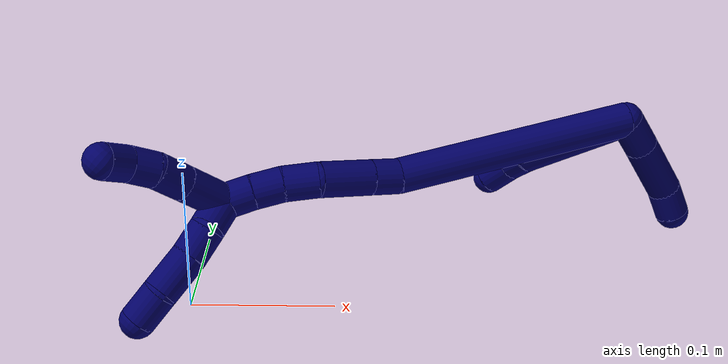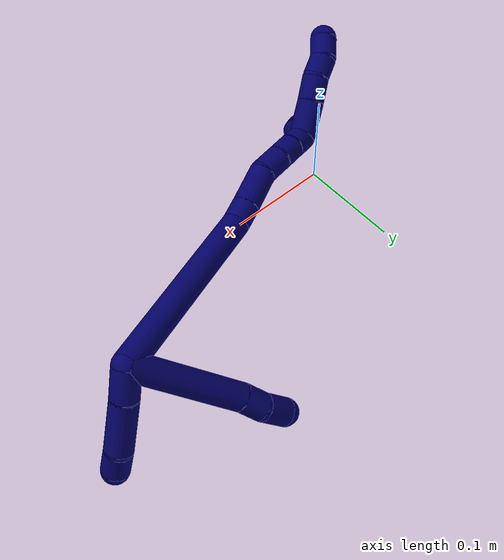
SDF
<sdf version="1.7">
 <world name="default">
  <model name="7">
   <static>0</static>
   <link name="7">
    <collision name="collision-cylinder-e_1_2_8">
     <pose>-0.011515 0.04112 -0.029482 -2.19283 -0.223762 0.430804</pose>
     <geometry><cylinder><radius>0.0125</radius><length>0.103782</length></cylinder></geometry>
     <surface>
      <friction><ode><mu>1.16</mu><mu2>1.16</mu2><slip1>0</slip1><slip2>0</slip2></ode></friction>
      <contact><ode><kp>1e+06</kp><kd>1</kd><max_vel>0</max_vel><min_depth>0.001</min_depth></ode></contact>
     </surface>
    </collision>
    <visual name="visual-cylinder-e_1_2_8">
     <pose>-0.011515 0.04112 -0.029482 -2.19283 -0.223762 0.430804</pose>
     <geometry><cylinder><radius>0.0125</radius><length>0.103782</length></cylinder></geometry>
     <material><ambient>0.003922 0 0.403922 1</ambient></material>
    </visual>
    <collision name="collision-cylinder-e_2_8_9">
     <pose>-0.024166 0.09143 -0.064401 -2.10502 -0.106058 0.185614</pose>
     <geometry><cylinder><radius>0.0125</radius><length>0.021475</length></cylinder></geometry>
     <surface>
      <friction><ode><mu>1.16</mu><mu2>1.16</mu2><slip1>0</slip1><slip2>0</slip2></ode></friction>
      <contact><ode><kp>1e+06</kp><kd>1</kd><max_vel>0</max_vel><min_depth>0.001</min_depth></ode></contact>
     </surface>
    </collision>
    <visual name="visual-cylinder-e_2_8_9">
     <pose>-0.024166 0.09143 -0.064401 -2.10502 -0.106058 0.185614</pose>
     <geometry><cylinder><radius>0.0125</radius><length>0.021475</length></cylinder></geometry>
     <material><ambient>0.003922 0 0.403922 1</ambient></material>
    </visual>
    <collision name="collision-cylinder-e_3_9_6">
     <pose>-0.026874 0.108958 -0.07884 -2.39441 -0.127375 0.322547</pose>
     <geometry><cylinder><radius>0.0125</radius><length>0.024744</length></cylinder></geometry>
     <surface>
      <friction><ode><mu>1.16</mu><mu2>1.16</mu2><slip1>0</slip1><slip2>0</slip2></ode></friction>
      <contact><ode><kp>1e+06</kp><kd>1</kd><max_vel>0</max_vel><min_depth>0.001</min_depth></ode></contact>
     </surface>
    </collision>
    <visual name="visual-cylinder-e_3_9_6">
     <pose>-0.026874 0.108958 -0.07884 -2.39441 -0.127375 0.322547</pose>
     <geometry><cylinder><radius>0.0125</radius><length>0.024744</length></cylinder></geometry>
     <material><ambient>0.003922 0 0.403922 1</ambient></material>
    </visual>
    <collision name="collision-cylinder-e_1_2_10">
     <pose>0.012076 0.008266 -0.002155 -1.82584 0.955122 -1.18026</pose>
     <geometry><cylinder><radius>0.0125</radius><length>0.029585</length></cylinder></geometry>
     <surface>
      <friction><ode><mu>1.16</mu><mu2>1.16</mu2><slip1>0</slip1><slip2>0</slip2></ode></friction>
      <contact><ode><kp>1e+06</kp><kd>1</kd><max_vel>0</max_vel><min_depth>0.001</min_depth></ode></contact>
     </surface>
    </collision>
    <visual name="visual-cylinder-e_1_2_10">
     <pose>0.012076 0.008266 -0.002155 -1.82584 0.955122 -1.18026</pose>
     <geometry><cylinder><radius>0.0125</radius><length>0.029585</length></cylinder></geometry>
     <material><ambient>0.003922 0 0.403922 1</ambient></material>
    </visual>
    <collision name="collision-cylinder-e_2_10_11">
     <pose>0.044261 0.028661 -0.008638 -1.91352 1.00119 -1.31994</pose>
     <geometry><cylinder><radius>0.0125</radius><length>0.047756</length></cylinder></geometry>
     <surface>
      <friction><ode><mu>1.16</mu><mu2>1.16</mu2><slip1>0</slip1><slip2>0</slip2></ode></friction>
      <contact><ode><kp>1e+06</kp><kd>1</kd><max_vel>0</max_vel><min_depth>0.001</min_depth></ode></contact>
     </surface>
    </collision>
    <visual name="visual-cylinder-e_2_10_11">
     <pose>0.044261 0.028661 -0.008638 -1.91352 1.00119 -1.31994</pose>
     <geometry><cylinder><radius>0.0125</radius><length>0.047756</length></cylinder></geometry>
     <material><ambient>0.003922 0 0.403922 1</ambient></material>
    </visual>
    <collision name="collision-cylinder-e_3_11_5">
     <pose>0.07397 0.045136 -0.017122 -2.3339 1.01125 -1.82689</pose>
     <geometry><cylinder><radius>0.0125</radius><length>0.022659</length></cylinder></geometry>
     <surface>
      <friction><ode><mu>1.16</mu><mu2>1.16</mu2><slip1>0</slip1><slip2>0</slip2></ode></friction>
      <contact><ode><kp>1e+06</kp><kd>1</kd><max_vel>0</max_vel><min_depth>0.001</min_depth></ode></contact>
     </surface>
    </collision>
    <visual name="visual-cylinder-e_3_11_5">
     <pose>0.07397 0.045136 -0.017122 -2.3339 1.01125 -1.82689</pose>
     <geometry><cylinder><radius>0.0125</radius><length>0.022659</length></cylinder></geometry>
     <material><ambient>0.003922 0 0.403922 1</ambient></material>
    </visual>
    <collision name="collision-cylinder-e_1_2_12">
     <pose>-0.050927 -0.012797 -0.069935 2.96062 -0.62159 -2.59097</pose>
     <geometry><cylinder><radius>0.0125</radius><length>0.174908</length></cylinder></geometry>
     <surface>
      <friction><ode><mu>1.16</mu><mu2>1.16</mu2><slip1>0</slip1><slip2>0</slip2></ode></friction>
      <contact><ode><kp>1e+06</kp><kd>1</kd><max_vel>0</max_vel><min_depth>0.001</min_depth></ode></contact>
     </surface>
    </collision>
    <visual name="visual-cylinder-e_1_2_12">
     <pose>-0.050927 -0.012797 -0.069935 2.96062 -0.62159 -2.59097</pose>
     <geometry><cylinder><radius>0.0125</radius><length>0.174908</length></cylinder></geometry>
     <material><ambient>0.003922 0 0.403922 1</ambient></material>
    </visual>
    <collision name="collision-cylinder-e_2_12_13">
     <pose>-0.109161 -0.02846 -0.146531 2.73523 -0.789171 -2.22272</pose>
     <geometry><cylinder><radius>0.0125</radius><length>0.020589</length></cylinder></geometry>
     <surface>
      <friction><ode><mu>1.16</mu><mu2>1.16</mu2><slip1>0</slip1><slip2>0</slip2></ode></friction>
      <contact><ode><kp>1e+06</kp><kd>1</kd><max_vel>0</max_vel><min_depth>0.001</min_depth></ode></contact>
     </surface>
    </collision>
    <visual name="visual-cylinder-e_2_12_13">
     <pose>-0.109161 -0.02846 -0.146531 2.73523 -0.789171 -2.22272</pose>
     <geometry><cylinder><radius>0.0125</radius><length>0.020589</length></cylinder></geometry>
     <material><ambient>0.003922 0 0.403922 1</ambient></material>
    </visual>
    <collision name="collision-cylinder-e_3_13_14">
     <pose>-0.130015 -0.037061 -0.165514 2.70598 -0.783789 -2.15827</pose>
     <geometry><cylinder><radius>0.0125</radius><length>0.03838</length></cylinder></geometry>
     <surface>
      <friction><ode><mu>1.16</mu><mu2>1.16</mu2><slip1>0</slip1><slip2>0</slip2></ode></friction>
      <contact><ode><kp>1e+06</kp><kd>1</kd><max_vel>0</max_vel><min_depth>0.001</min_depth></ode></contact>
     </surface>
    </collision>
    <visual name="visual-cylinder-e_3_13_14">
     <pose>-0.130015 -0.037061 -0.165514 2.70598 -0.783789 -2.15827</pose>
     <geometry><cylinder><radius>0.0125</radius><length>0.03838</length></cylinder></geometry>
     <material><ambient>0.003922 0 0.403922 1</ambient></material>
    </visual>
    <collision name="collision-cylinder-e_4_14_15">
     <pose>-0.151782 -0.042835 -0.186816 3.1373 -0.741243 -3.13055</pose>
     <geometry><cylinder><radius>0.0125</radius><length>0.024348</length></cylinder></geometry>
     <surface>
      <friction><ode><mu>1.16</mu><mu2>1.16</mu2><slip1>0</slip1><slip2>0</slip2></ode></friction>
      <contact><ode><kp>1e+06</kp><kd>1</kd><max_vel>0</max_vel><min_depth>0.001</min_depth></ode></contact>
     </surface>
    </collision>
    <visual name="visual-cylinder-e_4_14_15">
     <pose>-0.151782 -0.042835 -0.186816 3.1373 -0.741243 -3.13055</pose>
     <geometry><cylinder><radius>0.0125</radius><length>0.024348</length></cylinder></geometry>
     <material><ambient>0.003922 0 0.403922 1</ambient></material>
    </visual>
    <collision name="collision-cylinder-e_5_15_16">
     <pose>-0.166066 -0.043175 -0.204585 3.10721 -0.603703 -3.03127</pose>
     <geometry><cylinder><radius>0.0125</radius><length>0.021365</length></cylinder></geometry>
     <surface>
      <friction><ode><mu>1.16</mu><mu2>1.16</mu2><slip1>0</slip1><slip2>0</slip2></ode></friction>
      <contact><ode><kp>1e+06</kp><kd>1</kd><max_vel>0</max_vel><min_depth>0.001</min_depth></ode></contact>
     </surface>
    </collision>
    <visual name="visual-cylinder-e_5_15_16">
     <pose>-0.166066 -0.043175 -0.204585 3.10721 -0.603703 -3.03127</pose>
     <geometry><cylinder><radius>0.0125</radius><length>0.021365</length></cylinder></geometry>
     <material><ambient>0.003922 0 0.403922 1</ambient></material>
    </visual>
    <collision name="collision-cylinder-e_6_16_1">
     <pose>-0.177303 -0.043699 -0.222168 3.11638 -0.531474 -3.04902</pose>
     <geometry><cylinder><radius>0.0125</radius><length>0.020411</length></cylinder></geometry>
     <surface>
      <friction><ode><mu>1.16</mu><mu2>1.16</mu2><slip1>0</slip1><slip2>0</slip2></ode></friction>
      <contact><ode><kp>1e+06</kp><kd>1</kd><max_vel>0</max_vel><min_depth>0.001</min_depth></ode></contact>
     </surface>
    </collision>
    <visual name="visual-cylinder-e_6_16_1">
     <pose>-0.177303 -0.043699 -0.222168 3.11638 -0.531474 -3.04902</pose>
     <geometry><cylinder><radius>0.0125</radius><length>0.020411</length></cylinder></geometry>
     <material><ambient>0.003922 0 0.403922 1</ambient></material>
    </visual>
    <collision name="collision-cylinder-e_1_1_17">
     <pose>-0.181114 -0.049131 -0.241224 2.67176 0.11771 0.482789</pose>
     <geometry><cylinder><radius>0.0125</radius><length>0.023176</length></cylinder></geometry>
     <surface>
      <friction><ode><mu>1.16</mu><mu2>1.16</mu2><slip1>0</slip1><slip2>0</slip2></ode></friction>
      <contact><ode><kp>1e+06</kp><kd>1</kd><max_vel>0</max_vel><min_depth>0.001</min_depth></ode></contact>
     </surface>
    </collision>
    <visual name="visual-cylinder-e_1_1_17">
     <pose>-0.181114 -0.049131 -0.241224 2.67176 0.11771 0.482789</pose>
     <geometry><cylinder><radius>0.0125</radius><length>0.023176</length></cylinder></geometry>
     <material><ambient>0.003922 0 0.403922 1</ambient></material>
    </visual>
    <collision name="collision-cylinder-e_2_17_18">
     <pose>-0.178315 -0.055733 -0.262262 3.01315 0.131557 1.59483</pose>
     <geometry><cylinder><radius>0.0125</radius><length>0.021922</length></cylinder></geometry>
     <surface>
      <friction><ode><mu>1.16</mu><mu2>1.16</mu2><slip1>0</slip1><slip2>0</slip2></ode></friction>
      <contact><ode><kp>1e+06</kp><kd>1</kd><max_vel>0</max_vel><min_depth>0.001</min_depth></ode></contact>
     </surface>
    </collision>
    <visual name="visual-cylinder-e_2_17_18">
     <pose>-0.178315 -0.055733 -0.262262 3.01315 0.131557 1.59483</pose>
     <geometry><cylinder><radius>0.0125</radius><length>0.021922</length></cylinder></geometry>
     <material><ambient>0.003922 0 0.403922 1</ambient></material>
    </visual>
    <collision name="collision-cylinder-e_3_18_19">
     <pose>-0.176449 -0.059387 -0.288214 2.99365 0.027919 0.372408</pose>
     <geometry><cylinder><radius>0.0125</radius><length>0.030699</length></cylinder></geometry>
     <surface>
      <friction><ode><mu>1.16</mu><mu2>1.16</mu2><slip1>0</slip1><slip2>0</slip2></ode></friction>
      <contact><ode><kp>1e+06</kp><kd>1</kd><max_vel>0</max_vel><min_depth>0.001</min_depth></ode></contact>
     </surface>
    </collision>
    <visual name="visual-cylinder-e_3_18_19">
     <pose>-0.176449 -0.059387 -0.288214 2.99365 0.027919 0.372408</pose>
     <geometry><cylinder><radius>0.0125</radius><length>0.030699</length></cylinder></geometry>
     <material><ambient>0.003922 0 0.403922 1</ambient></material>
    </visual>
    <collision name="collision-cylinder-e_4_19_4">
     <pose>-0.175437 -0.06008 -0.315375 -3.01148 0.048225 -0.709114</pose>
     <geometry><cylinder><radius>0.0125</radius><length>0.024204</length></cylinder></geometry>
     <surface>
      <friction><ode><mu>1.16</mu><mu2>1.16</mu2><slip1>0</slip1><slip2>0</slip2></ode></friction>
      <contact><ode><kp>1e+06</kp><kd>1</kd><max_vel>0</max_vel><min_depth>0.001</min_depth></ode></contact>
     </surface>
    </collision>
    <visual name="visual-cylinder-e_4_19_4">
     <pose>-0.175437 -0.06008 -0.315375 -3.01148 0.048225 -0.709114</pose>
     <geometry><cylinder><radius>0.0125</radius><length>0.024204</length></cylinder></geometry>
     <material><ambient>0.003922 0 0.403922 1</ambient></material>
    </visual>
    <collision name="collision-cylinder-e_1_1_20">
     <pose>-0.197088 -0.052646 -0.234484 1.95433 -0.998767 -1.35963</pose>
     <geometry><cylinder><radius>0.0125</radius><length>0.034759</length></cylinder></geometry>
     <surface>
      <friction><ode><mu>1.16</mu><mu2>1.16</mu2><slip1>0</slip1><slip2>0</slip2></ode></friction>
      <contact><ode><kp>1e+06</kp><kd>1</kd><max_vel>0</max_vel><min_depth>0.001</min_depth></ode></contact>
     </surface>
    </collision>
    <visual name="visual-cylinder-e_1_1_20">
     <pose>-0.197088 -0.052646 -0.234484 1.95433 -0.998767 -1.35963</pose>
     <geometry><cylinder><radius>0.0125</radius><length>0.034759</length></cylinder></geometry>
     <material><ambient>0.003922 0 0.403922 1</ambient></material>
    </visual>
    <collision name="collision-cylinder-e_2_20_21">
     <pose>-0.221619 -0.067813 -0.240428 1.9306 -0.96416 -1.29453</pose>
     <geometry><cylinder><radius>0.0125</radius><length>0.024146</length></cylinder></geometry>
     <surface>
      <friction><ode><mu>1.16</mu><mu2>1.16</mu2><slip1>0</slip1><slip2>0</slip2></ode></friction>
      <contact><ode><kp>1e+06</kp><kd>1</kd><max_vel>0</max_vel><min_depth>0.001</min_depth></ode></contact>
     </surface>
    </collision>
    <visual name="visual-cylinder-e_2_20_21">
     <pose>-0.221619 -0.067813 -0.240428 1.9306 -0.96416 -1.29453</pose>
     <geometry><cylinder><radius>0.0125</radius><length>0.024146</length></cylinder></geometry>
     <material><ambient>0.003922 0 0.403922 1</ambient></material>
    </visual>
    <collision name="collision-cylinder-e_3_21_22">
     <pose>-0.239807 -0.078204 -0.247012 2.38239 -0.964268 -1.8389</pose>
     <geometry><cylinder><radius>0.0125</radius><length>0.020129</length></cylinder></geometry>
     <surface>
      <friction><ode><mu>1.16</mu><mu2>1.16</mu2><slip1>0</slip1><slip2>0</slip2></ode></friction>
      <contact><ode><kp>1e+06</kp><kd>1</kd><max_vel>0</max_vel><min_depth>0.001</min_depth></ode></contact>
     </surface>
    </collision>
    <visual name="visual-cylinder-e_3_21_22">
     <pose>-0.239807 -0.078204 -0.247012 2.38239 -0.964268 -1.8389</pose>
     <geometry><cylinder><radius>0.0125</radius><length>0.020129</length></cylinder></geometry>
     <material><ambient>0.003922 0 0.403922 1</ambient></material>
    </visual>
    <collision name="collision-cylinder-e_4_22_3">
     <pose>-0.254685 -0.089126 -0.255369 2.11242 -0.68203 -1.12103</pose>
     <geometry><cylinder><radius>0.0125</radius><length>0.020966</length></cylinder></geometry>
     <surface>
      <friction><ode><mu>1.16</mu><mu2>1.16</mu2><slip1>0</slip1><slip2>0</slip2></ode></friction>
      <contact><ode><kp>1e+06</kp><kd>1</kd><max_vel>0</max_vel><min_depth>0.001</min_depth></ode></contact>
     </surface>
    </collision>
    <visual name="visual-cylinder-e_4_22_3">
     <pose>-0.254685 -0.089126 -0.255369 2.11242 -0.68203 -1.12103</pose>
     <geometry><cylinder><radius>0.0125</radius><length>0.020966</length></cylinder></geometry>
     <material><ambient>0.003922 0 0.403922 1</ambient></material>
    </visual>
    <collision name="collision-sphere-3">
     <pose>-0.261293 -0.096099 -0.259565 0 -0 0</pose>
     <geometry><sphere><radius>0.0125</radius></sphere></geometry>
     <surface>
      <friction><ode><mu>1.16</mu><mu2>1.16</mu2><slip1>0</slip1><slip2>0</slip2></ode></friction>
      <contact><ode><kp>1e+06</kp><kd>1</kd><max_vel>0</max_vel><min_depth>0.001</min_depth></ode></contact>
     </surface>
    </collision>
    <visual name="visual-sphere-3">
     <pose>-0.261293 -0.096099 -0.259565 0 -0 0</pose>
     <geometry><sphere><radius>0.0125</radius></sphere></geometry>
     <material><ambient>0.003922 0 0.403922 1</ambient></material>
    </visual>
    <collision name="collision-sphere-22">
     <pose>-0.248076 -0.082153 -0.251174 0 -0 0</pose>
     <geometry><sphere><radius>0.0125</radius></sphere></geometry>
     <surface>
      <friction><ode><mu>1.16</mu><mu2>1.16</mu2><slip1>0</slip1><slip2>0</slip2></ode></friction>
      <contact><ode><kp>1e+06</kp><kd>1</kd><max_vel>0</max_vel><min_depth>0.001</min_depth></ode></contact>
     </surface>
    </collision>
    <visual name="visual-sphere-22">
     <pose>-0.248076 -0.082153 -0.251174 0 -0 0</pose>
     <geometry><sphere><radius>0.0125</radius></sphere></geometry>
     <material><ambient>0.003922 0 0.403922 1</ambient></material>
    </visual>
    <collision name="collision-sphere-21">
     <pose>-0.231538 -0.074255 -0.242851 0 -0 0</pose>
     <geometry><sphere><radius>0.0125</radius></sphere></geometry>
     <surface>
      <friction><ode><mu>1.16</mu><mu2>1.16</mu2><slip1>0</slip1><slip2>0</slip2></ode></friction>
      <contact><ode><kp>1e+06</kp><kd>1</kd><max_vel>0</max_vel><min_depth>0.001</min_depth></ode></contact>
     </surface>
    </collision>
    <visual name="visual-sphere-21">
     <pose>-0.231538 -0.074255 -0.242851 0 -0 0</pose>
     <geometry><sphere><radius>0.0125</radius></sphere></geometry>
     <material><ambient>0.003922 0 0.403922 1</ambient></material>
    </visual>
    <collision name="collision-sphere-20">
     <pose>-0.211701 -0.061371 -0.238004 0 -0 0</pose>
     <geometry><sphere><radius>0.0125</radius></sphere></geometry>
     <surface>
      <friction><ode><mu>1.16</mu><mu2>1.16</mu2><slip1>0</slip1><slip2>0</slip2></ode></friction>
      <contact><ode><kp>1e+06</kp><kd>1</kd><max_vel>0</max_vel><min_depth>0.001</min_depth></ode></contact>
     </surface>
    </collision>
    <visual name="visual-sphere-20">
     <pose>-0.211701 -0.061371 -0.238004 0 -0 0</pose>
     <geometry><sphere><radius>0.0125</radius></sphere></geometry>
     <material><ambient>0.003922 0 0.403922 1</ambient></material>
    </visual>
    <collision name="collision-sphere-4">
     <pose>-0.174854 -0.058512 -0.327361 0 -0 0</pose>
     <geometry><sphere><radius>0.0125</radius></sphere></geometry>
     <surface>
      <friction><ode><mu>1.16</mu><mu2>1.16</mu2><slip1>0</slip1><slip2>0</slip2></ode></friction>
      <contact><ode><kp>1e+06</kp><kd>1</kd><max_vel>0</max_vel><min_depth>0.001</min_depth></ode></contact>
     </surface>
    </collision>
    <visual name="visual-sphere-4">
     <pose>-0.174854 -0.058512 -0.327361 0 -0 0</pose>
     <geometry><sphere><radius>0.0125</radius></sphere></geometry>
     <material><ambient>0.003922 0 0.403922 1</ambient></material>
    </visual>
    <collision name="collision-sphere-11">
     <pose>0.064369 0.04079 -0.012966 0 -0 0</pose>
     <geometry><sphere><radius>0.0125</radius></sphere></geometry>
     <surface>
      <friction><ode><mu>1.16</mu><mu2>1.16</mu2><slip1>0</slip1><slip2>0</slip2></ode></friction>
      <contact><ode><kp>1e+06</kp><kd>1</kd><max_vel>0</max_vel><min_depth>0.001</min_depth></ode></contact>
     </surface>
    </collision>
    <visual name="visual-sphere-11">
     <pose>0.064369 0.04079 -0.012966 0 -0 0</pose>
     <geometry><sphere><radius>0.0125</radius></sphere></geometry>
     <material><ambient>0.003922 0 0.403922 1</ambient></material>
    </visual>
    <collision name="collision-sphere-10">
     <pose>0.024153 0.016533 -0.004311 0 -0 0</pose>
     <geometry><sphere><radius>0.0125</radius></sphere></geometry>
     <surface>
      <friction><ode><mu>1.16</mu><mu2>1.16</mu2><slip1>0</slip1><slip2>0</slip2></ode></friction>
      <contact><ode><kp>1e+06</kp><kd>1</kd><max_vel>0</max_vel><min_depth>0.001</min_depth></ode></contact>
     </surface>
    </collision>
    <visual name="visual-sphere-10">
     <pose>0.024153 0.016533 -0.004311 0 -0 0</pose>
     <geometry><sphere><radius>0.0125</radius></sphere></geometry>
     <material><ambient>0.003922 0 0.403922 1</ambient></material>
    </visual>
    <collision name="collision-sphere-6">
     <pose>-0.028446 0.117298 -0.087843 0 -0 0</pose>
     <geometry><sphere><radius>0.0125</radius></sphere></geometry>
     <surface>
      <friction><ode><mu>1.16</mu><mu2>1.16</mu2><slip1>0</slip1><slip2>0</slip2></ode></friction>
      <contact><ode><kp>1e+06</kp><kd>1</kd><max_vel>0</max_vel><min_depth>0.001</min_depth></ode></contact>
     </surface>
    </collision>
    <visual name="visual-sphere-6">
     <pose>-0.028446 0.117298 -0.087843 0 -0 0</pose>
     <geometry><sphere><radius>0.0125</radius></sphere></geometry>
     <material><ambient>0.003922 0 0.403922 1</ambient></material>
    </visual>
    <collision name="collision-sphere-9">
     <pose>-0.025302 0.100619 -0.069838 0 -0 0</pose>
     <geometry><sphere><radius>0.0125</radius></sphere></geometry>
     <surface>
      <friction><ode><mu>1.16</mu><mu2>1.16</mu2><slip1>0</slip1><slip2>0</slip2></ode></friction>
      <contact><ode><kp>1e+06</kp><kd>1</kd><max_vel>0</max_vel><min_depth>0.001</min_depth></ode></contact>
     </surface>
    </collision>
    <visual name="visual-sphere-9">
     <pose>-0.025302 0.100619 -0.069838 0 -0 0</pose>
     <geometry><sphere><radius>0.0125</radius></sphere></geometry>
     <material><ambient>0.003922 0 0.403922 1</ambient></material>
    </visual>
    <collision name="collision-sphere-2">
     <geometry><sphere><radius>0.0125</radius></sphere></geometry>
     <surface>
      <friction><ode><mu>1.16</mu><mu2>1.16</mu2><slip1>0</slip1><slip2>0</slip2></ode></friction>
      <contact><ode><kp>1e+06</kp><kd>1</kd><max_vel>0</max_vel><min_depth>0.001</min_depth></ode></contact>
     </surface>
    </collision>
    <visual name="visual-sphere-2">
     <geometry><sphere><radius>0.0125</radius></sphere></geometry>
     <material><ambient>0.003922 0 0.403922 1</ambient></material>
    </visual>
    <collision name="collision-sphere-19">
     <pose>-0.176021 -0.061648 -0.30339 0 -0 0</pose>
     <geometry><sphere><radius>0.0125</radius></sphere></geometry>
     <surface>
      <friction><ode><mu>1.16</mu><mu2>1.16</mu2><slip1>0</slip1><slip2>0</slip2></ode></friction>
      <contact><ode><kp>1e+06</kp><kd>1</kd><max_vel>0</max_vel><min_depth>0.001</min_depth></ode></contact>
     </surface>
    </collision>
    <visual name="visual-sphere-19">
     <pose>-0.176021 -0.061648 -0.30339 0 -0 0</pose>
     <geometry><sphere><radius>0.0125</radius></sphere></geometry>
     <material><ambient>0.003922 0 0.403922 1</ambient></material>
    </visual>
    <collision name="collision-sphere-8">
     <pose>-0.023029 0.08224 -0.058965 0 -0 0</pose>
     <geometry><sphere><radius>0.0125</radius></sphere></geometry>
     <surface>
      <friction><ode><mu>1.16</mu><mu2>1.16</mu2><slip1>0</slip1><slip2>0</slip2></ode></friction>
      <contact><ode><kp>1e+06</kp><kd>1</kd><max_vel>0</max_vel><min_depth>0.001</min_depth></ode></contact>
     </surface>
    </collision>
    <visual name="visual-sphere-8">
     <pose>-0.023029 0.08224 -0.058965 0 -0 0</pose>
     <geometry><sphere><radius>0.0125</radius></sphere></geometry>
     <material><ambient>0.003922 0 0.403922 1</ambient></material>
    </visual>
    <collision name="collision-sphere-5">
     <pose>0.083572 0.049482 -0.021279 0 -0 0</pose>
     <geometry><sphere><radius>0.0125</radius></sphere></geometry>
     <surface>
      <friction><ode><mu>1.16</mu><mu2>1.16</mu2><slip1>0</slip1><slip2>0</slip2></ode></friction>
      <contact><ode><kp>1e+06</kp><kd>1</kd><max_vel>0</max_vel><min_depth>0.001</min_depth></ode></contact>
     </surface>
    </collision>
    <visual name="visual-sphere-5">
     <pose>0.083572 0.049482 -0.021279 0 -0 0</pose>
     <geometry><sphere><radius>0.0125</radius></sphere></geometry>
     <material><ambient>0.003922 0 0.403922 1</ambient></material>
    </visual>
    <collision name="collision-sphere-12">
     <pose>-0.101854 -0.025593 -0.13987 0 -0 0</pose>
     <geometry><sphere><radius>0.0125</radius></sphere></geometry>
     <surface>
      <friction><ode><mu>1.16</mu><mu2>1.16</mu2><slip1>0</slip1><slip2>0</slip2></ode></friction>
      <contact><ode><kp>1e+06</kp><kd>1</kd><max_vel>0</max_vel><min_depth>0.001</min_depth></ode></contact>
     </surface>
    </collision>
    <visual name="visual-sphere-12">
     <pose>-0.101854 -0.025593 -0.13987 0 -0 0</pose>
     <geometry><sphere><radius>0.0125</radius></sphere></geometry>
     <material><ambient>0.003922 0 0.403922 1</ambient></material>
    </visual>
    <collision name="collision-sphere-13">
     <pose>-0.116467 -0.031326 -0.153192 0 -0 0</pose>
     <geometry><sphere><radius>0.0125</radius></sphere></geometry>
     <surface>
      <friction><ode><mu>1.16</mu><mu2>1.16</mu2><slip1>0</slip1><slip2>0</slip2></ode></friction>
      <contact><ode><kp>1e+06</kp><kd>1</kd><max_vel>0</max_vel><min_depth>0.001</min_depth></ode></contact>
     </surface>
    </collision>
    <visual name="visual-sphere-13">
     <pose>-0.116467 -0.031326 -0.153192 0 -0 0</pose>
     <geometry><sphere><radius>0.0125</radius></sphere></geometry>
     <material><ambient>0.003922 0 0.403922 1</ambient></material>
    </visual>
    <collision name="collision-sphere-14">
     <pose>-0.143562 -0.042796 -0.177836 0 -0 0</pose>
     <geometry><sphere><radius>0.0125</radius></sphere></geometry>
     <surface>
      <friction><ode><mu>1.16</mu><mu2>1.16</mu2><slip1>0</slip1><slip2>0</slip2></ode></friction>
      <contact><ode><kp>1e+06</kp><kd>1</kd><max_vel>0</max_vel><min_depth>0.001</min_depth></ode></contact>
     </surface>
    </collision>
    <visual name="visual-sphere-14">
     <pose>-0.143562 -0.042796 -0.177836 0 -0 0</pose>
     <geometry><sphere><radius>0.0125</radius></sphere></geometry>
     <material><ambient>0.003922 0 0.403922 1</ambient></material>
    </visual>
    <collision name="collision-sphere-15">
     <pose>-0.160002 -0.042873 -0.195796 0 -0 0</pose>
     <geometry><sphere><radius>0.0125</radius></sphere></geometry>
     <surface>
      <friction><ode><mu>1.16</mu><mu2>1.16</mu2><slip1>0</slip1><slip2>0</slip2></ode></friction>
      <contact><ode><kp>1e+06</kp><kd>1</kd><max_vel>0</max_vel><min_depth>0.001</min_depth></ode></contact>
     </surface>
    </collision>
    <visual name="visual-sphere-15">
     <pose>-0.160002 -0.042873 -0.195796 0 -0 0</pose>
     <geometry><sphere><radius>0.0125</radius></sphere></geometry>
     <material><ambient>0.003922 0 0.403922 1</ambient></material>
    </visual>
    <collision name="collision-sphere-16">
     <pose>-0.172131 -0.043478 -0.213374 0 -0 0</pose>
     <geometry><sphere><radius>0.0125</radius></sphere></geometry>
     <surface>
      <friction><ode><mu>1.16</mu><mu2>1.16</mu2><slip1>0</slip1><slip2>0</slip2></ode></friction>
      <contact><ode><kp>1e+06</kp><kd>1</kd><max_vel>0</max_vel><min_depth>0.001</min_depth></ode></contact>
     </surface>
    </collision>
    <visual name="visual-sphere-16">
     <pose>-0.172131 -0.043478 -0.213374 0 -0 0</pose>
     <geometry><sphere><radius>0.0125</radius></sphere></geometry>
     <material><ambient>0.003922 0 0.403922 1</ambient></material>
    </visual>
    <collision name="collision-sphere-1">
     <pose>-0.182475 -0.043921 -0.230963 0 -0 0</pose>
     <geometry><sphere><radius>0.0125</radius></sphere></geometry>
     <surface>
      <friction><ode><mu>1.16</mu><mu2>1.16</mu2><slip1>0</slip1><slip2>0</slip2></ode></friction>
      <contact><ode><kp>1e+06</kp><kd>1</kd><max_vel>0</max_vel><min_depth>0.001</min_depth></ode></contact>
     </surface>
    </collision>
    <visual name="visual-sphere-1">
     <pose>-0.182475 -0.043921 -0.230963 0 -0 0</pose>
     <geometry><sphere><radius>0.0125</radius></sphere></geometry>
     <material><ambient>0.003922 0 0.403922 1</ambient></material>
    </visual>
    <collision name="collision-sphere-18">
     <pose>-0.176877 -0.057125 -0.273038 0 -0 0</pose>
     <geometry><sphere><radius>0.0125</radius></sphere></geometry>
     <surface>
      <friction><ode><mu>1.16</mu><mu2>1.16</mu2><slip1>0</slip1><slip2>0</slip2></ode></friction>
      <contact><ode><kp>1e+06</kp><kd>1</kd><max_vel>0</max_vel><min_depth>0.001</min_depth></ode></contact>
     </surface>
    </collision>
    <visual name="visual-sphere-18">
     <pose>-0.176877 -0.057125 -0.273038 0 -0 0</pose>
     <geometry><sphere><radius>0.0125</radius></sphere></geometry>
     <material><ambient>0.003922 0 0.403922 1</ambient></material>
    </visual>
    <collision name="collision-sphere-17">
     <pose>-0.179753 -0.054341 -0.251485 0 -0 0</pose>
     <geometry><sphere><radius>0.0125</radius></sphere></geometry>
     <surface>
      <friction><ode><mu>1.16</mu><mu2>1.16</mu2><slip1>0</slip1><slip2>0</slip2></ode></friction>
      <contact><ode><kp>1e+06</kp><kd>1</kd><max_vel>0</max_vel><min_depth>0.001</min_depth></ode></contact>
     </surface>
    </collision>
    <visual name="visual-sphere-17">
     <pose>-0.179753 -0.054341 -0.251485 0 -0 0</pose>
     <geometry><sphere><radius>0.0125</radius></sphere></geometry>
     <material><ambient>0.003922 0 0.403922 1</ambient></material>
    </visual>
    <inertial>
     <pose>-0.08717 -0.010785 -0.125888 0 -0 0</pose>
     <mass>0.75</mass>
     <inertia>
      <ixx>-0.000405</ixx>
      <ixy>0</ixy>
      <ixz>0</ixz>
      <iyy>0.000216</iyy>
      <iyz>0</iyz>
      <izz>0.000239</izz>
     </inertia>
    </inertial>
   </link>
   <pose>0.305342 0.105063 0.097907 -0.49293 0.704831 -0.177217</pose>
  </model>
 </world>
</sdf>
